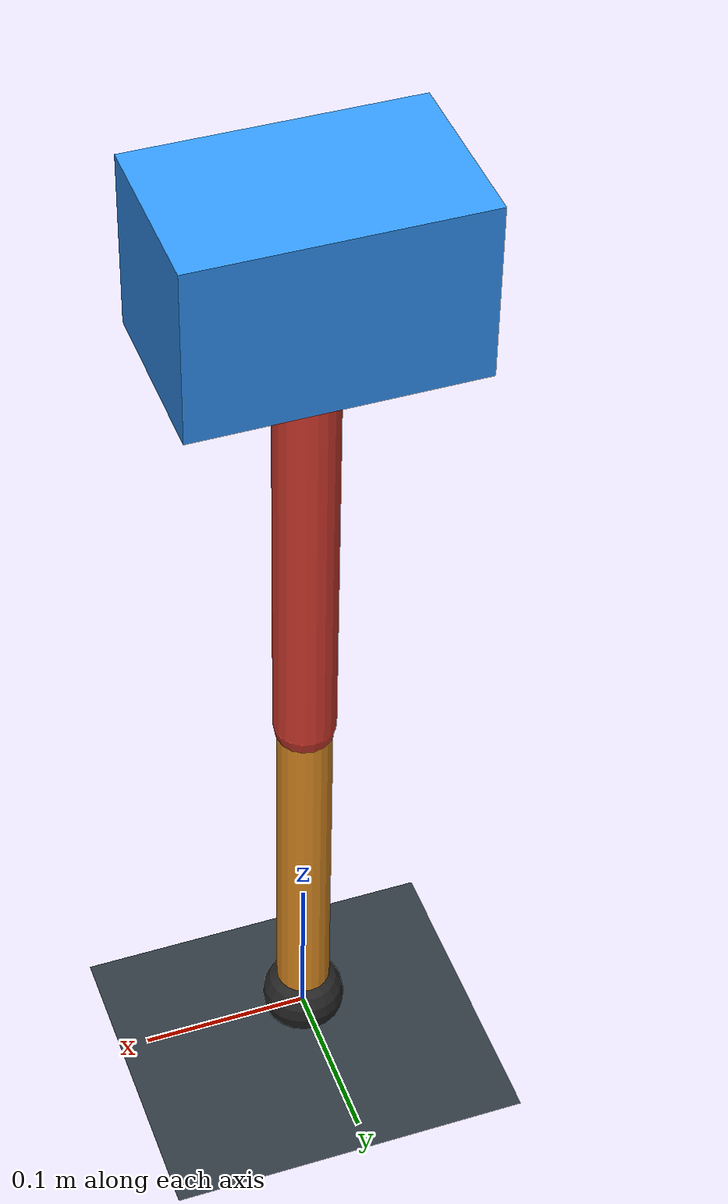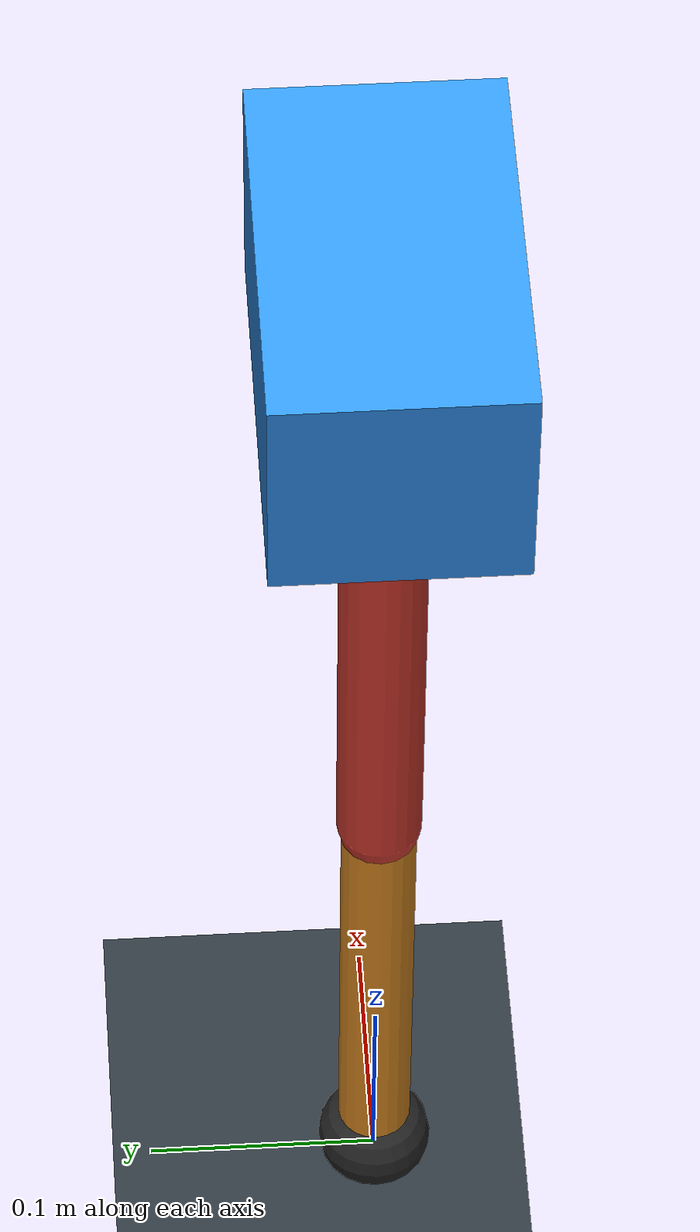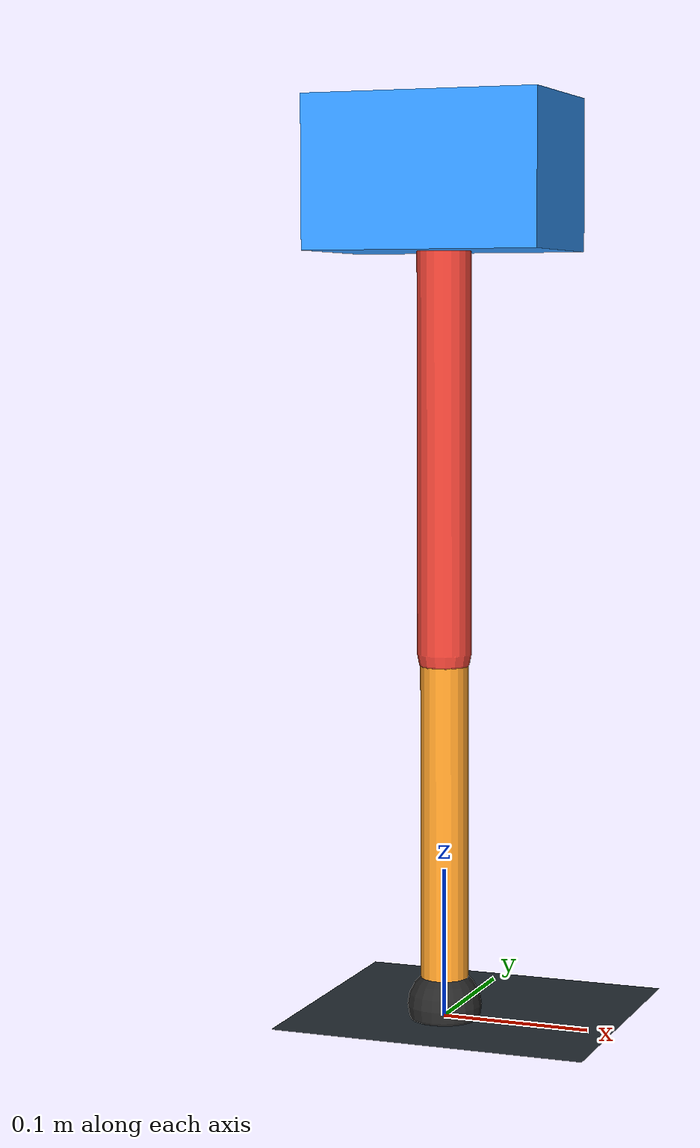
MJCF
<mujoco model="single_axis_two_bar">
  <compiler angle="radian" inertiafromgeom="true"/>
  <option timestep="0.001" integrator="implicitfast" gravity="0 0 -9.81"/>
  <default>
    <joint damping="0.08"/>
    <geom friction="1.2 0.01 0.0001" condim="3"/>
  </default>
  <worldbody>
    <geom name="floor" type="plane" size="5 5 0.1" rgba="0.18 0.22 0.25 1"/>
    <body name="carriage" pos="0 0 0.5609066971464562">
      <joint name="pole_slide" type="slide" axis="0 0 1"/>
      <geom name="payload" type="box" size="0.08 0.05 0.05" mass="3.951061233281365" rgba="0.2 0.6 1 1"/>
      <body name="thigh" pos="0 0 0">
        <joint name="hip" type="hinge" axis="0 1 0"/>
        <geom name="thigh_link" type="capsule" fromto="0 0 0 0 0 -0.3155134095775889" size="0.018" mass="0.2248074734659031" rgba="0.9 0.25 0.2 1"/>
        <body name="shank" pos="0 0 -0.3155134095775889">
          <joint name="knee" type="hinge" axis="0 1 0"/>
          <geom name="shank_link" type="capsule" fromto="0 0 0 0 0 -0.23696772150123196" size="0.016" mass="0.16884263282180217" rgba="0.95 0.6 0.15 1"/>
          <geom name="foot" type="sphere" pos="0 0 -0.23696772150123196" size="0.025" mass="0.03" rgba="0.15 0.15 0.15 1"/>
          <site name="toe" pos="0 0 -0.23696772150123196" size="0.008"/>
        </body>
      </body>
    </body>
  </worldbody>
  <actuator>
    <motor name="hip_motor" joint="hip" ctrlrange="-37.55880770166468 37.55880770166468"/>
    <motor name="knee_motor" joint="knee" ctrlrange="-141.31919405652823 141.31919405652823"/>
  </actuator>
</mujoco>
